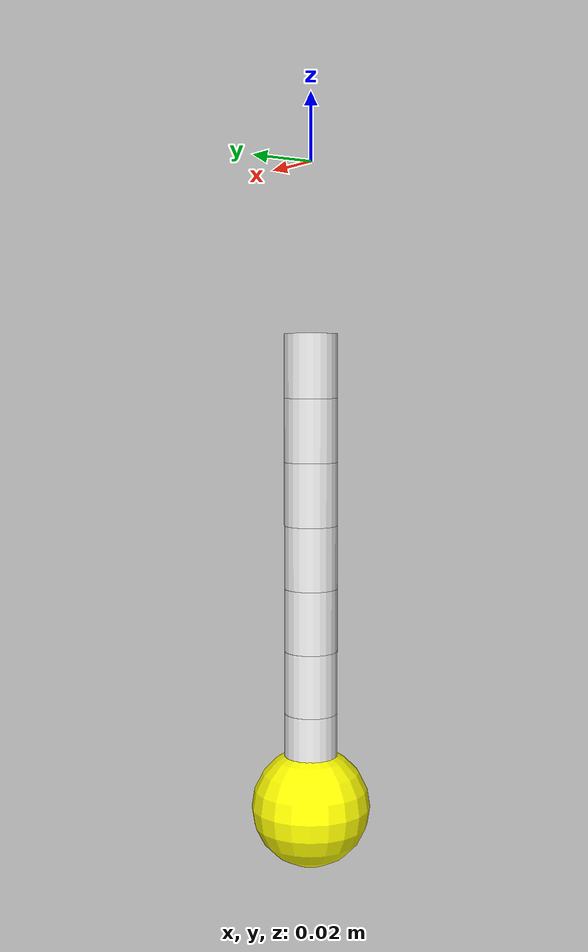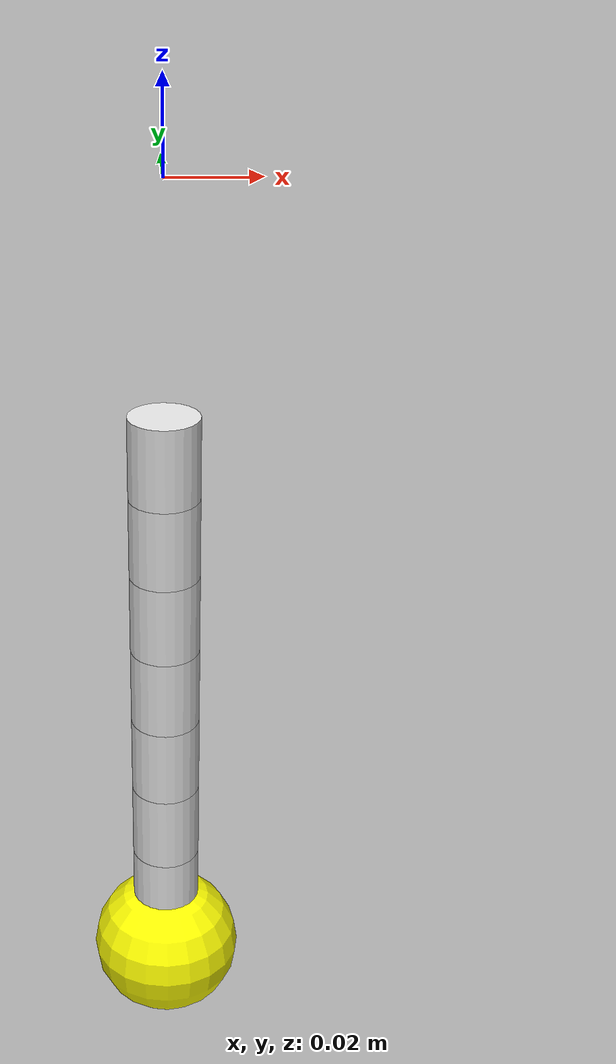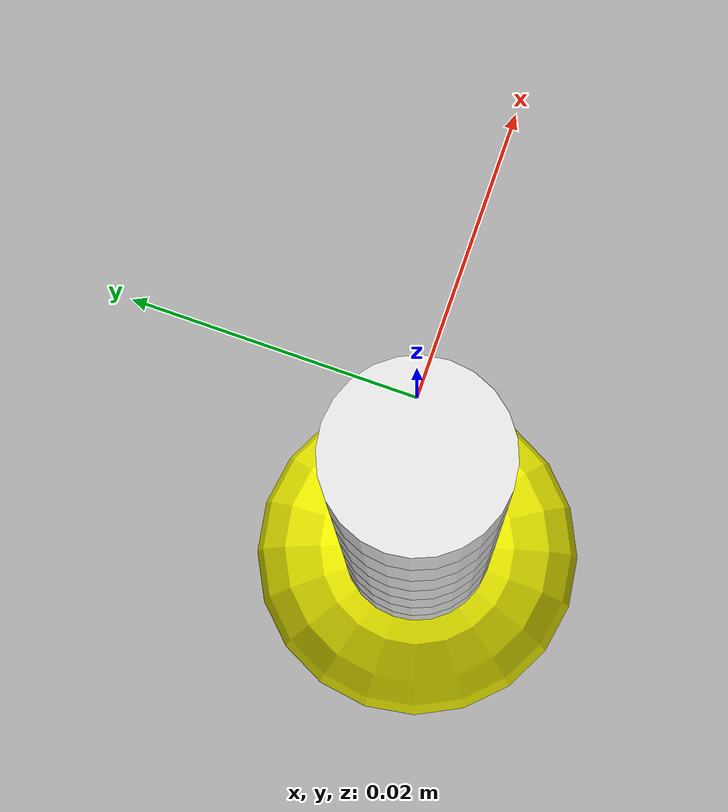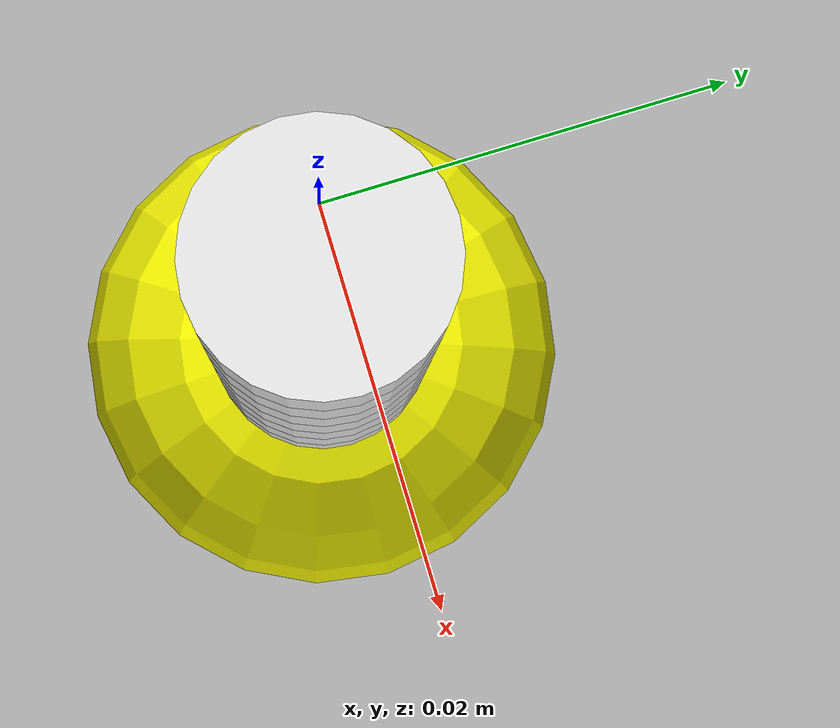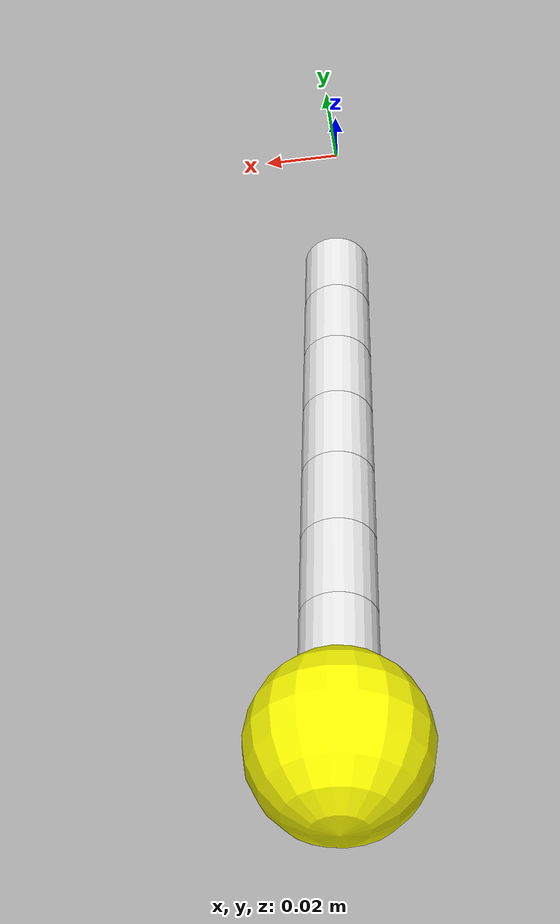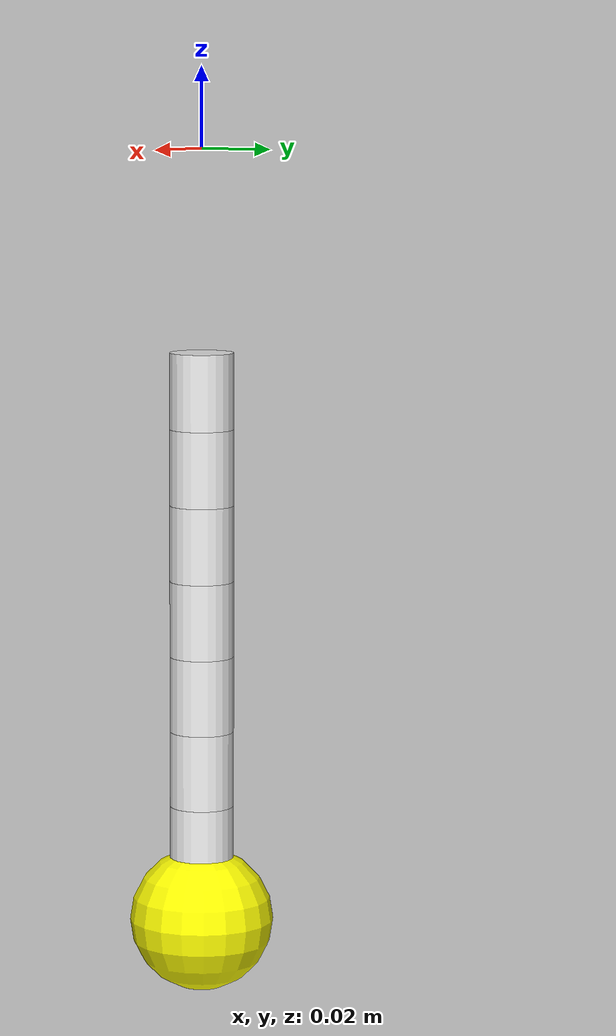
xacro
<?xml version="1.0"?>
<!--
  Scaffold URDF/Xacro for the panda arm: cylinder chain with the upstream
  arm's joint names. Pairs with models/x500_with_panda/model.sdf so
  ros2_control sees the same kinematics in Gazebo.
-->
<robot xmlns:xacro="http://www.ros.org/wiki/xacro" name="panda">

  <xacro:macro name="scaffold_link" params="name color_r color_g color_b">
    <link name="${name}">
      <inertial>
        <mass value="0.025"/>
        <origin xyz="0 0 0.0095" rpy="0 0 0"/>
        <inertia ixx="1.152083e-06" iyy="1.152083e-06" izz="8.000000e-07"
                 ixy="0" ixz="0" iyz="0"/>
      </inertial>
      <visual>
        <origin xyz="0 0 0.0095" rpy="0 0 0"/>
        <geometry><cylinder radius="0.008" length="0.019"/></geometry>
        <material name="${name}_mat"><color rgba="${color_r} ${color_g} ${color_b} 1"/></material>
      </visual>
      <collision>
        <origin xyz="0 0 0.0095" rpy="0 0 0"/>
        <geometry><cylinder radius="0.008" length="0.019"/></geometry>
      </collision>
    </link>
  </xacro:macro>

  <link name="base_link"/>

  <xacro:scaffold_link name="panda_link1" color_r="0.9" color_g="0.9" color_b="0.9"/>
  <joint name="panda_joint1" type="revolute">
    <parent link="base_link"/>
    <child link="panda_link1"/>
    <origin xyz="0 0 -0.05" rpy="3.14159 0 0"/>
    <axis xyz="0 1 0"/>
    <limit lower="-3.14159" upper="3.14159" effort="2.0" velocity="3.0"/>
    <dynamics damping="0.05" friction="0.01"/>
  </joint>
  <xacro:scaffold_link name="panda_link2" color_r="0.9" color_g="0.9" color_b="0.9"/>
  <joint name="panda_joint2" type="revolute">
    <parent link="panda_link1"/>
    <child link="panda_link2"/>
    <origin xyz="0 0 0.0190" rpy="0 0 0"/>
    <axis xyz="0 1 0"/>
    <limit lower="-3.14159" upper="3.14159" effort="2.0" velocity="3.0"/>
    <dynamics damping="0.05" friction="0.01"/>
  </joint>
  <xacro:scaffold_link name="panda_link3" color_r="0.9" color_g="0.9" color_b="0.9"/>
  <joint name="panda_joint3" type="revolute">
    <parent link="panda_link2"/>
    <child link="panda_link3"/>
    <origin xyz="0 0 0.0190" rpy="0 0 0"/>
    <axis xyz="0 1 0"/>
    <limit lower="-3.14159" upper="3.14159" effort="2.0" velocity="3.0"/>
    <dynamics damping="0.05" friction="0.01"/>
  </joint>
  <xacro:scaffold_link name="panda_link4" color_r="0.9" color_g="0.9" color_b="0.9"/>
  <joint name="panda_joint4" type="revolute">
    <parent link="panda_link3"/>
    <child link="panda_link4"/>
    <origin xyz="0 0 0.0190" rpy="0 0 0"/>
    <axis xyz="0 1 0"/>
    <limit lower="-3.14159" upper="3.14159" effort="2.0" velocity="3.0"/>
    <dynamics damping="0.05" friction="0.01"/>
  </joint>
  <xacro:scaffold_link name="panda_link5" color_r="0.9" color_g="0.9" color_b="0.9"/>
  <joint name="panda_joint5" type="revolute">
    <parent link="panda_link4"/>
    <child link="panda_link5"/>
    <origin xyz="0 0 0.0190" rpy="0 0 0"/>
    <axis xyz="0 1 0"/>
    <limit lower="-3.14159" upper="3.14159" effort="2.0" velocity="3.0"/>
    <dynamics damping="0.05" friction="0.01"/>
  </joint>
  <xacro:scaffold_link name="panda_link6" color_r="0.9" color_g="0.9" color_b="0.9"/>
  <joint name="panda_joint6" type="revolute">
    <parent link="panda_link5"/>
    <child link="panda_link6"/>
    <origin xyz="0 0 0.0190" rpy="0 0 0"/>
    <axis xyz="0 1 0"/>
    <limit lower="-3.14159" upper="3.14159" effort="2.0" velocity="3.0"/>
    <dynamics damping="0.05" friction="0.01"/>
  </joint>
  <xacro:scaffold_link name="panda_link7" color_r="0.9" color_g="0.9" color_b="0.9"/>
  <joint name="panda_joint7" type="revolute">
    <parent link="panda_link6"/>
    <child link="panda_link7"/>
    <origin xyz="0 0 0.0190" rpy="0 0 0"/>
    <axis xyz="0 1 0"/>
    <limit lower="-3.14159" upper="3.14159" effort="2.0" velocity="3.0"/>
    <dynamics damping="0.05" friction="0.01"/>
  </joint>

  <link name="panda_hand">
    <inertial>
      <mass value="0.02"/>
      <inertia ixx="1e-5" iyy="1e-5" izz="1e-5" ixy="0" ixz="0" iyz="0"/>
    </inertial>
    <visual>
      <geometry><sphere radius="0.018"/></geometry>
      <material name="ee_mat"><color rgba="1 1 0 1"/></material>
    </visual>
    <collision><geometry><sphere radius="0.018"/></geometry></collision>
  </link>
  <joint name="j_ee" type="fixed">
    <parent link="panda_link7"/>
    <child link="panda_hand"/>
    <origin xyz="0 0 0.0290" rpy="0 0 0"/>
  </joint>

  <xacro:arg name="sim_mode" default="gz"/>
  <ros2_control name="panda_hw" type="system">
    <hardware>
      <xacro:if value="${'$(arg sim_mode)' == 'gz'}">
        <plugin>gz_ros2_control/GazeboSimSystem</plugin>
      </xacro:if>
      <xacro:unless value="${'$(arg sim_mode)' == 'gz'}">
        <plugin>mock_components/GenericSystem</plugin>
      </xacro:unless>
    </hardware>
    <joint name="panda_joint1">
      <command_interface name="position"/>
      <state_interface name="position"/>
      <state_interface name="velocity"/>
    </joint>
    <joint name="panda_joint2">
      <command_interface name="position"/>
      <state_interface name="position"/>
      <state_interface name="velocity"/>
    </joint>
    <joint name="panda_joint3">
      <command_interface name="position"/>
      <state_interface name="position"/>
      <state_interface name="velocity"/>
    </joint>
    <joint name="panda_joint4">
      <command_interface name="position"/>
      <state_interface name="position"/>
      <state_interface name="velocity"/>
    </joint>
    <joint name="panda_joint5">
      <command_interface name="position"/>
      <state_interface name="position"/>
      <state_interface name="velocity"/>
    </joint>
    <joint name="panda_joint6">
      <command_interface name="position"/>
      <state_interface name="position"/>
      <state_interface name="velocity"/>
    </joint>
    <joint name="panda_joint7">
      <command_interface name="position"/>
      <state_interface name="position"/>
      <state_interface name="velocity"/>
    </joint>
  </ros2_control>

</robot>
